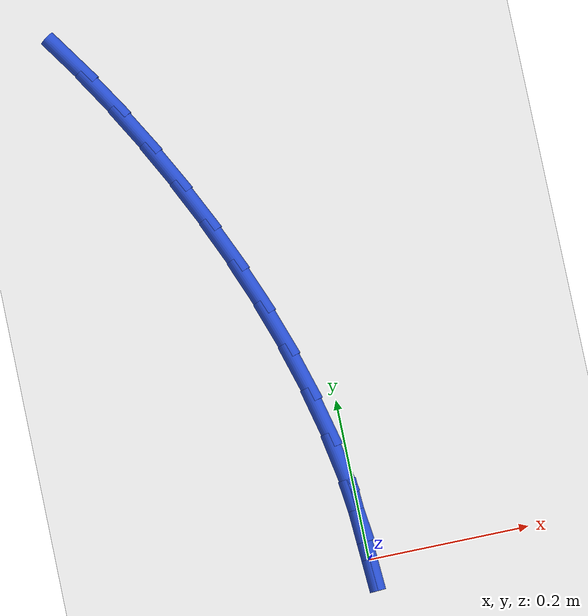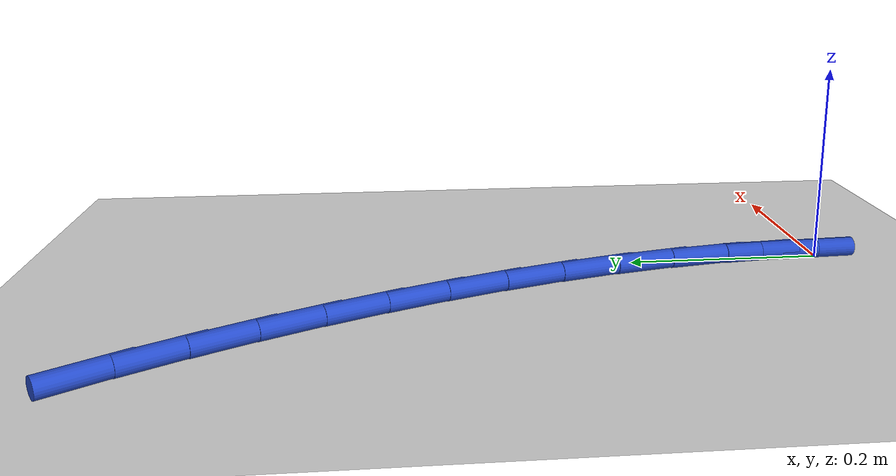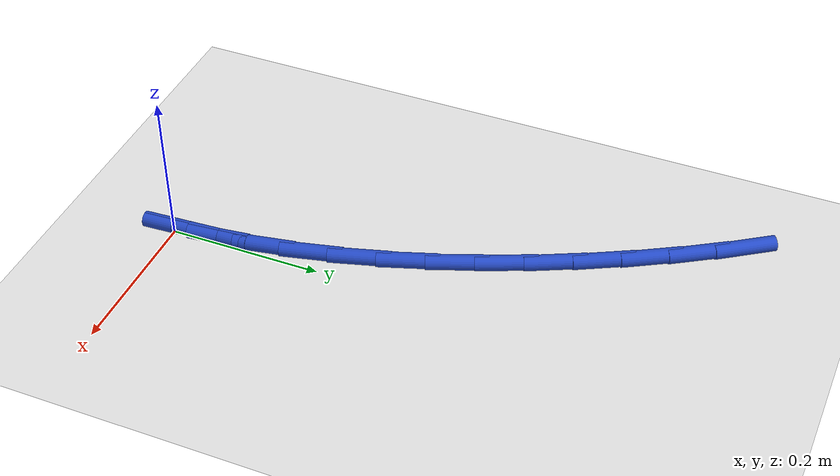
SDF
<sdf version="1.6">
 <world name="default">
  <model name="ground_plane">
   <static>1</static>
   <link name="link">
    <collision name="collision">
     <geometry><plane><normal>0 0 1</normal><size>100 100</size></plane></geometry>
     <surface><friction><ode><mu>100</mu><mu2>50</mu2></ode></friction></surface>
    </collision>
    <visual name="visual">
     <cast_shadows>0</cast_shadows>
     <geometry><plane><normal>0 0 1</normal><size>100 100</size></plane></geometry>
     <material>
      <script><uri>file://media/materials/scripts/gazebo.material</uri><name>Gazebo/WhiteGlow</name></script>
     </material>
    </visual>
   </link>
  </model>
  <model name="line">
   <link name="link_0">
    <pose>-2.7755575615628914e-17 -4.163336342344337e-17 0.01 0 1.57 -1.5142411801973692</pose>
    <collision name="collision">
     <geometry><cylinder><radius>0.01</radius><length>0.08</length></cylinder></geometry>
    </collision>
    <visual name="visual">
     <material>
      <script><name>Gazebo/Blue</name><uri>file://media/materials/scripts/gazebo.material</uri></script>
     </material>
     <geometry><cylinder><radius>0.01</radius><length>0.08</length></cylinder></geometry>
    </visual>
   </link>
   <link name="link_1">
    <pose>-0.0034881542654956856 0.06161127228872072 0.01 0 1.57 -1.450450209602575</pose>
    <collision name="collision">
     <geometry><cylinder><radius>0.01</radius><length>0.08</length></cylinder></geometry>
    </collision>
    <visual name="visual">
     <material>
      <script><name>Gazebo/Blue</name><uri>file://media/materials/scripts/gazebo.material</uri></script>
     </material>
     <geometry><cylinder><radius>0.01</radius><length>0.08</length></cylinder></geometry>
    </visual>
   </link>
   <link name="link_2">
    <pose>-0.010866348939183071 0.1226231310685752 0.01 0 1.57 -1.3908592475686803</pose>
    <collision name="collision">
     <geometry><cylinder><radius>0.01</radius><length>0.08</length></cylinder></geometry>
    </collision>
    <visual name="visual">
     <material>
      <script><name>Gazebo/Blue</name><uri>file://media/materials/scripts/gazebo.material</uri></script>
     </material>
     <geometry><cylinder><radius>0.01</radius><length>0.08</length></cylinder></geometry>
    </visual>
   </link>
   <link name="link_3">
    <pose>-0.02183983222899007 0.1829486411590742 0.01 0 1.57 -1.3355453246252866</pose>
    <collision name="collision">
     <geometry><cylinder><radius>0.01</radius><length>0.08</length></cylinder></geometry>
    </collision>
    <visual name="visual">
     <material>
      <script><name>Gazebo/Blue</name><uri>file://media/materials/scripts/gazebo.material</uri></script>
     </material>
     <geometry><cylinder><radius>0.01</radius><length>0.08</length></cylinder></geometry>
    </visual>
   </link>
   <link name="link_4">
    <pose>-0.03611385234284459 0.24250086737972837 0.01 0 1.57 -1.2844712624030252</pose>
    <collision name="collision">
     <geometry><cylinder><radius>0.01</radius><length>0.08</length></cylinder></geometry>
    </collision>
    <visual name="visual">
     <material>
      <script><name>Gazebo/Blue</name><uri>file://media/materials/scripts/gazebo.material</uri></script>
     </material>
     <geometry><cylinder><radius>0.01</radius><length>0.08</length></cylinder></geometry>
    </visual>
   </link>
   <link name="link_5">
    <pose>-0.05339365748867449 0.30119287455004834 0.01 0 1.57 -1.2375174559239301</pose>
    <collision name="collision">
     <geometry><cylinder><radius>0.01</radius><length>0.08</length></cylinder></geometry>
    </collision>
    <visual name="visual">
     <material>
      <script><name>Gazebo/Blue</name><uri>file://media/materials/scripts/gazebo.material</uri></script>
     </material>
     <geometry><cylinder><radius>0.01</radius><length>0.08</length></cylinder></geometry>
    </visual>
   </link>
   <link name="link_6">
    <pose>-0.07338449587440768 0.35893772748954494 0.01 0 1.57 -1.1945105784196666</pose>
    <collision name="collision">
     <geometry><cylinder><radius>0.01</radius><length>0.08</length></cylinder></geometry>
    </collision>
    <visual name="visual">
     <material>
      <script><name>Gazebo/Blue</name><uri>file://media/materials/scripts/gazebo.material</uri></script>
     </material>
     <geometry><cylinder><radius>0.01</radius><length>0.08</length></cylinder></geometry>
    </visual>
   </link>
   <link name="link_7">
    <pose>-0.09579161570797202 0.41564849101772866 0.01 0 1.57 -1.1552475436636709</pose>
    <collision name="collision">
     <geometry><cylinder><radius>0.01</radius><length>0.08</length></cylinder></geometry>
    </collision>
    <visual name="visual">
     <material>
      <script><name>Gazebo/Blue</name><uri>file://media/materials/scripts/gazebo.material</uri></script>
     </material>
     <geometry><cylinder><radius>0.01</radius><length>0.08</length></cylinder></geometry>
    </visual>
   </link>
   <link name="link_8">
    <pose>-0.12032026519729536 0.47123822995411013 0.01 0 1.57 -1.119428216712361</pose>
    <collision name="collision">
     <geometry><cylinder><radius>0.01</radius><length>0.08</length></cylinder></geometry>
    </collision>
    <visual name="visual">
     <material>
      <script><name>Gazebo/Blue</name><uri>file://media/materials/scripts/gazebo.material</uri></script>
     </material>
     <geometry><cylinder><radius>0.01</radius><length>0.08</length></cylinder></geometry>
    </visual>
   </link>
   <link name="link_9">
    <pose>-0.14668212923781898 0.5256213467694251 0.01 0 1.57 -1.084644547759724</pose>
    <collision name="collision">
     <geometry><cylinder><radius>0.01</radius><length>0.08</length></cylinder></geometry>
    </collision>
    <visual name="visual">
     <material>
      <script><name>Gazebo/Blue</name><uri>file://media/materials/scripts/gazebo.material</uri></script>
     </material>
     <geometry><cylinder><radius>0.01</radius><length>0.08</length></cylinder></geometry>
    </visual>
   </link>
   <link name="link_10">
    <pose>-0.1747567209359922 0.5787471214411233 0.01 0 1.57 -1.0485302585452265</pose>
    <collision name="collision">
     <geometry><cylinder><radius>0.01</radius><length>0.08</length></cylinder></geometry>
    </collision>
    <visual name="visual">
     <material>
      <script><name>Gazebo/Blue</name><uri>file://media/materials/scripts/gazebo.material</uri></script>
     </material>
     <geometry><cylinder><radius>0.01</radius><length>0.08</length></cylinder></geometry>
    </visual>
   </link>
   <link name="link_11">
    <pose>-0.2046031694065531 0.6306021611546239 0.01 0 1.57 -1.011084862113852</pose>
    <collision name="collision">
     <geometry><cylinder><radius>0.01</radius><length>0.08</length></cylinder></geometry>
    </collision>
    <visual name="visual">
     <material>
      <script><name>Gazebo/Blue</name><uri>file://media/materials/scripts/gazebo.material</uri></script>
     </material>
     <geometry><cylinder><radius>0.01</radius><length>0.08</length></cylinder></geometry>
    </visual>
   </link>
   <link name="link_12">
    <pose>-0.2362894014170829 0.6811749013946179 0.01 0 1.57 -0.9724507390556787</pose>
    <collision name="collision">
     <geometry><cylinder><radius>0.01</radius><length>0.08</length></cylinder></geometry>
    </collision>
    <visual name="visual">
     <material>
      <script><name>Gazebo/Blue</name><uri>file://media/materials/scripts/gazebo.material</uri></script>
     </material>
     <geometry><cylinder><radius>0.01</radius><length>0.08</length></cylinder></geometry>
    </visual>
   </link>
   <link name="link_120">
    <pose>-2.0816681711721685e-17 -8.326672684688674e-17 0.01 0 1.57 -1.513238774120278</pose>
    <collision name="collision">
     <geometry><cylinder><radius>0.01</radius><length>0.08</length></cylinder></geometry>
    </collision>
    <visual name="visual">
     <material>
      <script><name>Gazebo/Blue</name><uri>file://media/materials/scripts/gazebo.material</uri></script>
     </material>
     <geometry><cylinder><radius>0.01</radius><length>0.08</length></cylinder></geometry>
    </visual>
   </link>
   <link name="link_121">
    <pose>-0.0035466518034556645 0.061551164690429885 0.01 0 1.57 -1.513238774120278</pose>
    <collision name="collision">
     <geometry><cylinder><radius>0.01</radius><length>0.08</length></cylinder></geometry>
    </collision>
    <visual name="visual">
     <material>
      <script><name>Gazebo/Blue</name><uri>file://media/materials/scripts/gazebo.material</uri></script>
     </material>
     <geometry><cylinder><radius>0.01</radius><length>0.08</length></cylinder></geometry>
    </visual>
   </link>
  </model>
 </world>
</sdf>
